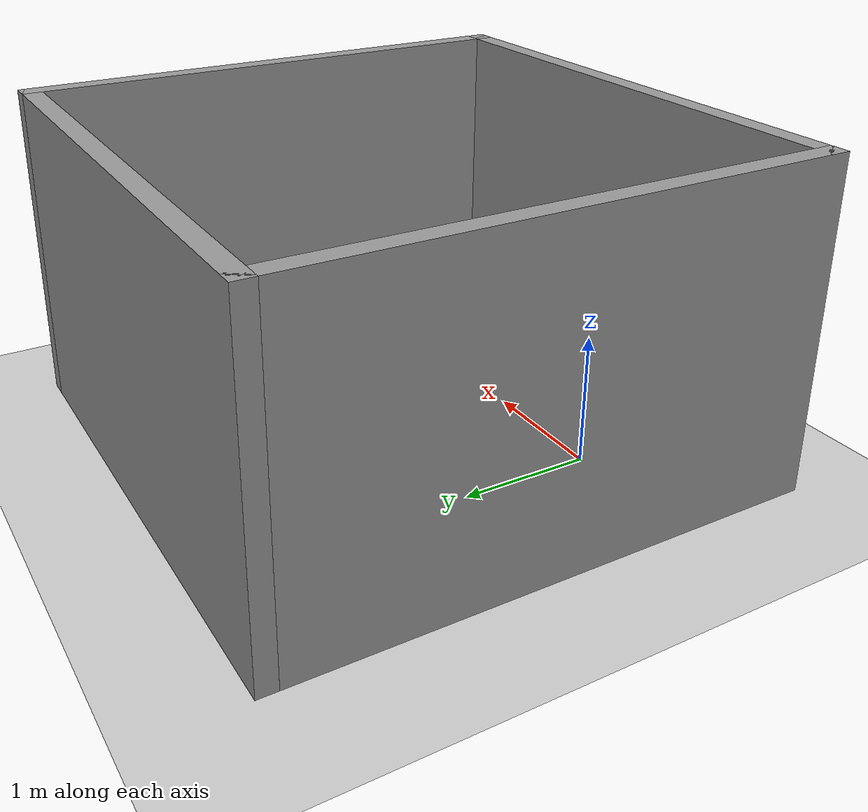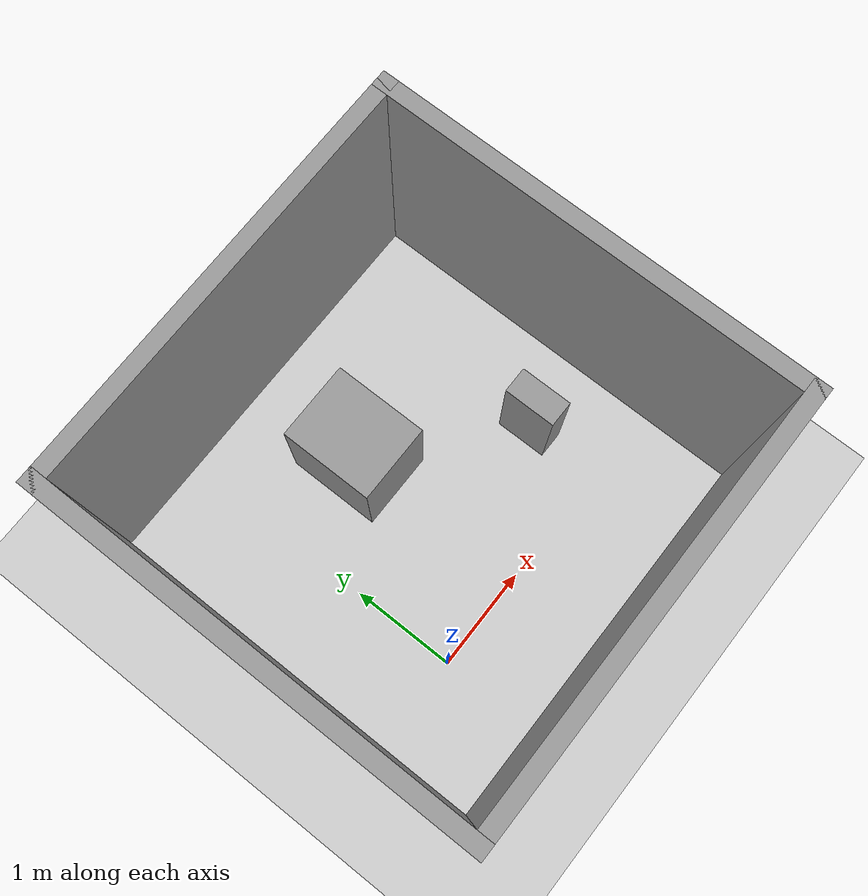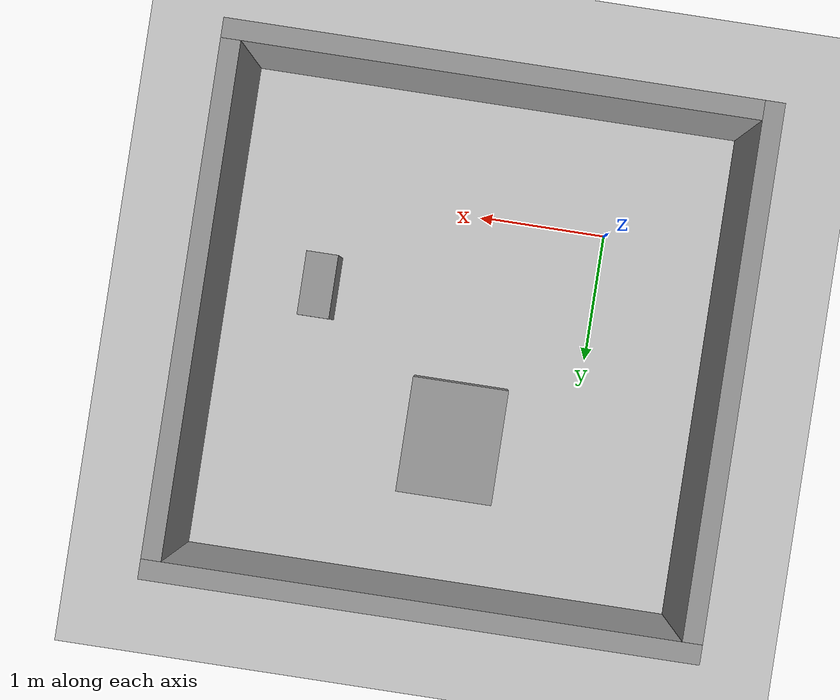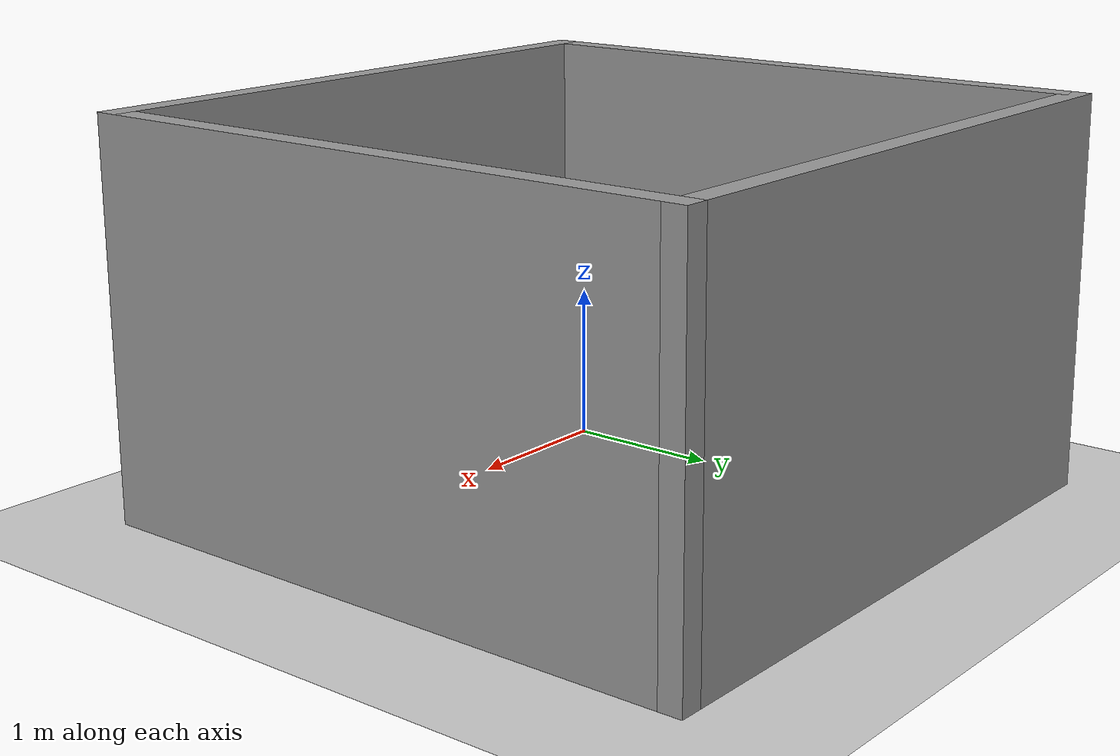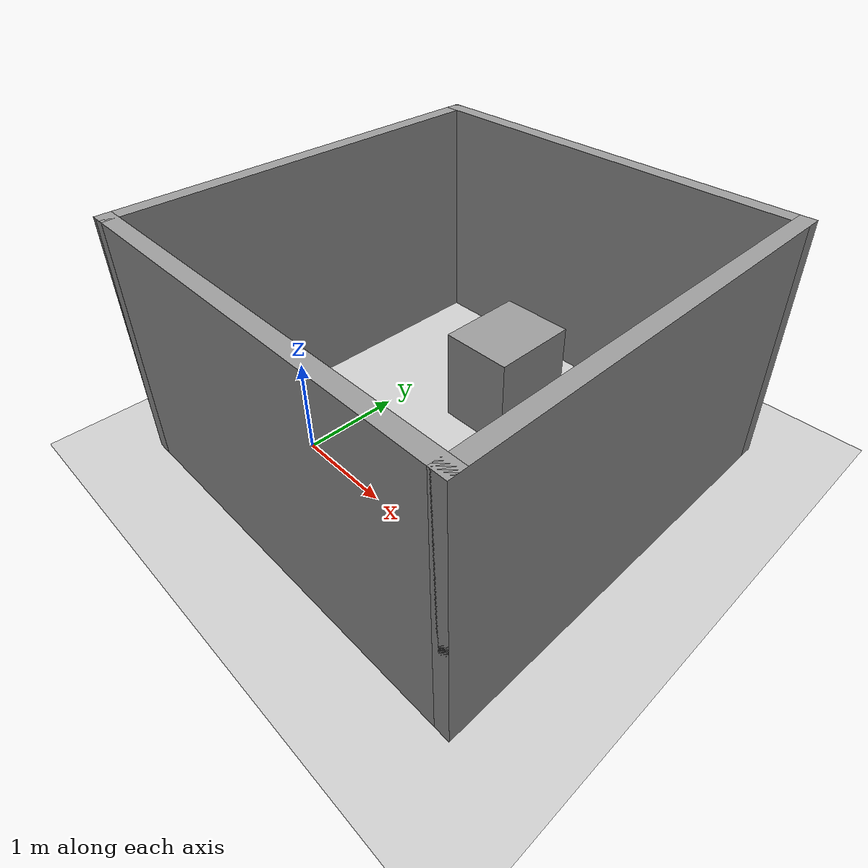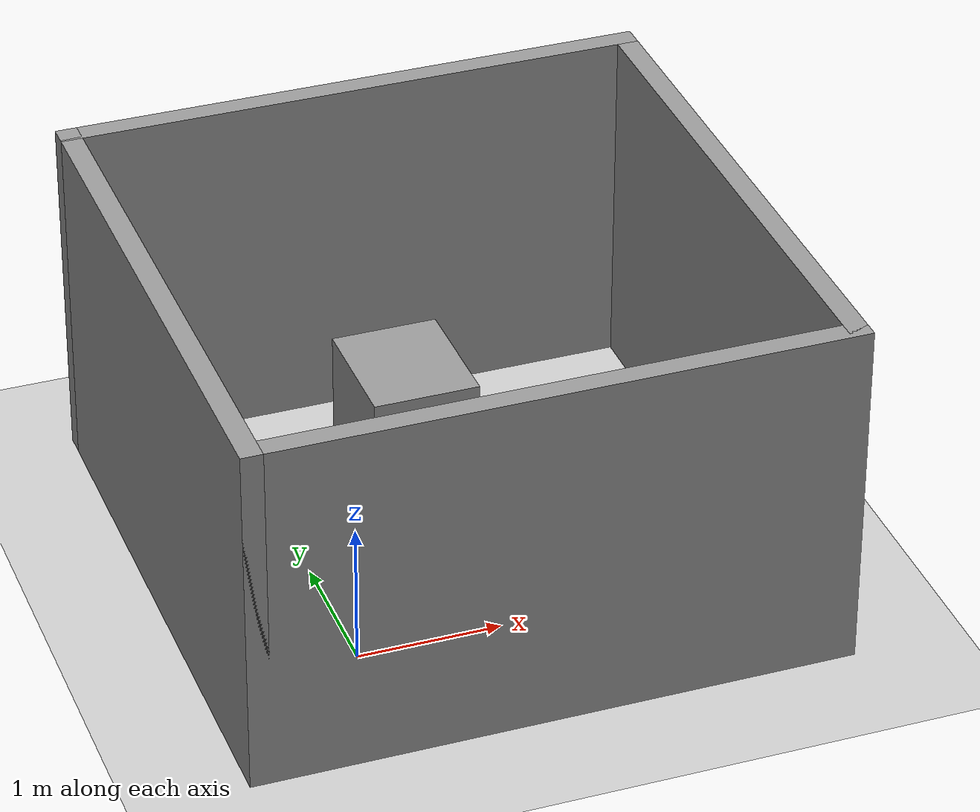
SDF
<sdf version="1.6">
 <world name="default">
  <light name="sun" type="directional">
   <pose>0 0 10 0 -0 0</pose>
   <diffuse>0.8 0.8 0.8 1</diffuse>
   <specular>0.2 0.2 0.2 1</specular>
   <attenuation>
    <range>1000</range>
    <constant>0.9</constant>
    <linear>0.01</linear>
    <quadratic>0.001</quadratic>
   </attenuation>
   <direction>-0.5 0.1 -0.9</direction>
  </light>
  <model name="ground_plane">
   <static>1</static>
   <link name="link">
    <collision name="collision">
     <geometry><plane><normal>0 0 1</normal><size>100 100</size></plane></geometry>
     <surface>
      <contact><collide_bitmask>65535</collide_bitmask></contact>
      <friction><ode><mu>100</mu><mu2>50</mu2></ode></friction>
     </surface>
    </collision>
    <visual name="visual">
     <cast_shadows>0</cast_shadows>
     <geometry><plane><normal>0 0 1</normal><size>100 100</size></plane></geometry>
     <material>
      <script><uri>file://media/materials/scripts/gazebo.material</uri><name>Gazebo/Grey</name></script>
     </material>
    </visual>
   </link>
  </model>
  <gravity>0 0 -9.8</gravity>
  <magnetic_field>6e-06 2.3e-05 -4.2e-05</magnetic_field>
  <atmosphere type="adiabatic"/>
  <physics name="default_physics" default="0" type="ode">
   <max_step_size>0.001</max_step_size>
   <real_time_factor>1</real_time_factor>
   <real_time_update_rate>1000</real_time_update_rate>
  </physics>
  <scene><ambient>0.4 0.4 0.4 1</ambient><background>0.7 0.7 0.7 1</background><shadows>1</shadows></scene>
  <audio><device>default</device></audio>
  <spherical_coordinates>
   <surface_model>EARTH_WGS84</surface_model>
   <latitude_deg>0</latitude_deg>
   <longitude_deg>0</longitude_deg>
   <elevation>0</elevation>
   <heading_deg>0</heading_deg>
  </spherical_coordinates>
  <model name="Square">
   <pose>1 1 0 0 -0 0</pose>
   <link name="Wall_0">
    <collision name="Wall_0_Collision">
     <geometry><box><size>4.15 0.15 2.5</size></box></geometry>
     <pose>0 0 1.25 0 -0 0</pose>
    </collision>
    <visual name="Wall_0_Visual">
     <pose>0 0 1.25 0 -0 0</pose>
     <geometry><box><size>4.15 0.15 2.5</size></box></geometry>
     <material>
      <script><uri>file://media/materials/scripts/gazebo.material</uri><name>Gazebo/Grey</name></script>
      <ambient>1 1 1 1</ambient>
     </material>
     <meta><layer>0</layer></meta>
    </visual>
    <pose>0 2 0 0 -0 3.14159</pose>
   </link>
   <link name="Wall_1">
    <collision name="Wall_1_Collision">
     <geometry><box><size>4.15 0.15 2.5</size></box></geometry>
     <pose>0 0 1.25 0 -0 0</pose>
    </collision>
    <visual name="Wall_1_Visual">
     <pose>0 0 1.25 0 -0 0</pose>
     <geometry><box><size>4.15 0.15 2.5</size></box></geometry>
     <material>
      <script><uri>file://media/materials/scripts/gazebo.material</uri><name>Gazebo/Grey</name></script>
      <ambient>1 1 1 1</ambient>
     </material>
     <meta><layer>0</layer></meta>
    </visual>
    <pose>-2 0 0 0 -0 -1.5708</pose>
   </link>
   <link name="Wall_2">
    <collision name="Wall_2_Collision">
     <geometry><box><size>4.15 0.15 2.5</size></box></geometry>
     <pose>0 0 1.25 0 -0 0</pose>
    </collision>
    <visual name="Wall_2_Visual">
     <pose>0 0 1.25 0 -0 0</pose>
     <geometry><box><size>4.15 0.15 2.5</size></box></geometry>
     <material>
      <script><uri>file://media/materials/scripts/gazebo.material</uri><name>Gazebo/Grey</name></script>
      <ambient>1 1 1 1</ambient>
     </material>
     <meta><layer>0</layer></meta>
    </visual>
    <pose>0 -2 0 0 -0 0</pose>
   </link>
   <link name="Wall_3">
    <collision name="Wall_3_Collision">
     <geometry><box><size>4.15 0.15 2.5</size></box></geometry>
     <pose>0 0 1.25 0 -0 0</pose>
    </collision>
    <visual name="Wall_3_Visual">
     <pose>0 0 1.25 0 -0 0</pose>
     <geometry><box><size>4.15 0.15 2.5</size></box></geometry>
     <material>
      <script><uri>file://media/materials/scripts/gazebo.material</uri><name>Gazebo/Grey</name></script>
      <ambient>1 1 1 1</ambient>
     </material>
     <meta><layer>0</layer></meta>
    </visual>
    <pose>2 0 0 0 -0 1.5708</pose>
   </link>
   <static>1</static>
  </model>
  <light name="user_spot_light_0" type="spot">
   <pose>1.993 2.01201 1 0 -0 0</pose>
   <diffuse>0.5 0.5 0.5 1</diffuse>
   <specular>0.1 0.1 0.1 1</specular>
   <direction>0 0 -1</direction>
   <attenuation>
    <range>20</range>
    <constant>0.5</constant>
    <linear>0.01</linear>
    <quadratic>0.001</quadratic>
   </attenuation>
   <cast_shadows>0</cast_shadows>
   <spot><inner_angle>0.6</inner_angle><outer_angle>1</outer_angle><falloff>1</falloff></spot>
  </light>
  <model name="unit_box">
   <link name="link">
    <inertial>
     <mass>1</mass>
     <inertia>
      <ixx>0.166667</ixx>
      <ixy>0</ixy>
      <ixz>0</ixz>
      <iyy>0.166667</iyy>
      <iyz>0</iyz>
      <izz>0.166667</izz>
     </inertia>
    </inertial>
    <visual name="visual">
     <geometry><box><size>0.25 0.5 1</size></box></geometry>
     <material>
      <script><name>Gazebo/Grey</name><uri>file://media/materials/scripts/gazebo.material</uri></script>
      <shader type="vertex"><normal_map>__default__</normal_map></shader>
      <ambient>0.3 0.3 0.3 1</ambient>
      <diffuse>0.7 0.7 0.7 1</diffuse>
      <specular>0.01 0.01 0.01 1</specular>
      <emissive>0 0 0 1</emissive>
     </material>
    </visual>
    <collision name="collision">
     <geometry><box><size>0.25 0.5 1</size></box></geometry>
     <surface>
      <friction>
       <ode><mu>1</mu><mu2>1</mu2><fdir1>0 0 0</fdir1><slip1>0</slip1><slip2>0</slip2></ode>
       <torsional>
        <coefficient>1</coefficient>
        <patch_radius>0</patch_radius>
        <surface_radius>0</surface_radius>
        <use_patch_radius>1</use_patch_radius>
        <ode><slip>0</slip></ode>
       </torsional>
      </friction>
      <bounce><restitution_coefficient>0</restitution_coefficient><threshold>1e+06</threshold></bounce>
      <contact>
       <collide_without_contact>0</collide_without_contact>
       <collide_without_contact_bitmask>1</collide_without_contact_bitmask>
       <collide_bitmask>1</collide_bitmask>
       <ode>
        <soft_cfm>0</soft_cfm>
        <soft_erp>0.2</soft_erp>
        <kp>1e+13</kp>
        <kd>1</kd>
        <max_vel>0.01</max_vel>
        <min_depth>0</min_depth>
       </ode>
       <bullet>
        <split_impulse>1</split_impulse>
        <split_impulse_penetration_threshold>-0.01</split_impulse_penetration_threshold>
        <soft_cfm>0</soft_cfm>
        <soft_erp>0.2</soft_erp>
        <kp>1e+13</kp>
        <kd>1</kd>
       </bullet>
      </contact>
     </surface>
    </collision>
   </link>
   <static>1</static>
   <pose>2.16887 0.737241 0.5 0 -0 0</pose>
  </model>
  <model name="unit_box_clone">
   <link name="link">
    <inertial>
     <mass>1</mass>
     <inertia>
      <ixx>0.166667</ixx>
      <ixy>0</ixy>
      <ixz>0</ixz>
      <iyy>0.166667</iyy>
      <iyz>0</iyz>
      <izz>0.166667</izz>
     </inertia>
    </inertial>
    <visual name="visual">
     <geometry><box><size>0.75 0.9 1</size></box></geometry>
     <material>
      <script><name>Gazebo/Grey</name><uri>file://media/materials/scripts/gazebo.material</uri></script>
      <shader type="vertex"><normal_map>__default__</normal_map></shader>
      <ambient>0.3 0.3 0.3 1</ambient>
      <diffuse>0.7 0.7 0.7 1</diffuse>
      <specular>0.01 0.01 0.01 1</specular>
      <emissive>0 0 0 1</emissive>
     </material>
    </visual>
    <collision name="collision">
     <geometry><box><size>0.75 0.9 1</size></box></geometry>
     <surface>
      <friction>
       <ode><mu>1</mu><mu2>1</mu2><fdir1>0 0 0</fdir1><slip1>0</slip1><slip2>0</slip2></ode>
       <torsional>
        <coefficient>1</coefficient>
        <patch_radius>0</patch_radius>
        <surface_radius>0</surface_radius>
        <use_patch_radius>1</use_patch_radius>
        <ode><slip>0</slip></ode>
       </torsional>
      </friction>
      <bounce><restitution_coefficient>0</restitution_coefficient><threshold>1e+06</threshold></bounce>
      <contact>
       <collide_without_contact>0</collide_without_contact>
       <collide_without_contact_bitmask>1</collide_without_contact_bitmask>
       <collide_bitmask>1</collide_bitmask>
       <ode>
        <soft_cfm>0</soft_cfm>
        <soft_erp>0.2</soft_erp>
        <kp>1e+13</kp>
        <kd>1</kd>
        <max_vel>0.01</max_vel>
        <min_depth>0</min_depth>
       </ode>
       <bullet>
        <split_impulse>1</split_impulse>
        <split_impulse_penetration_threshold>-0.01</split_impulse_penetration_threshold>
        <soft_cfm>0</soft_cfm>
        <soft_erp>0.2</soft_erp>
        <kp>1e+13</kp>
        <kd>1</kd>
       </bullet>
      </contact>
     </surface>
    </collision>
   </link>
   <static>1</static>
   <pose>0.955474 1.7754 0.5 0 -0 0</pose>
  </model>
 </world>
</sdf>
